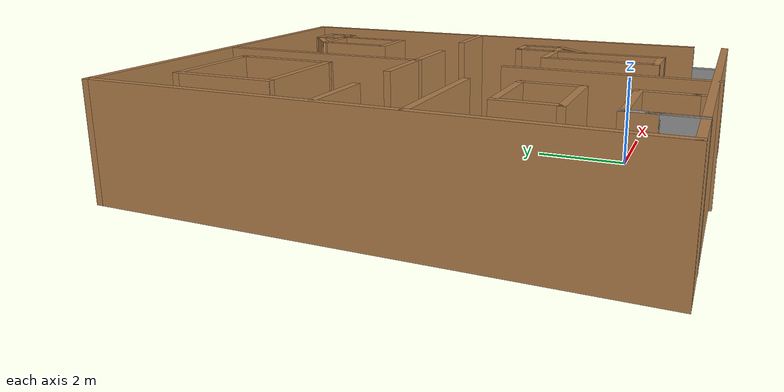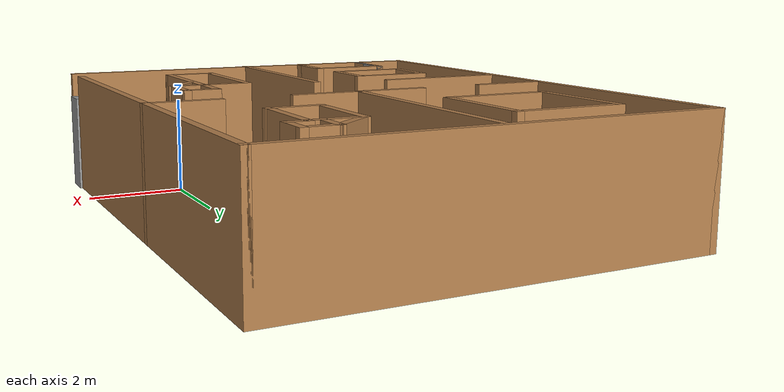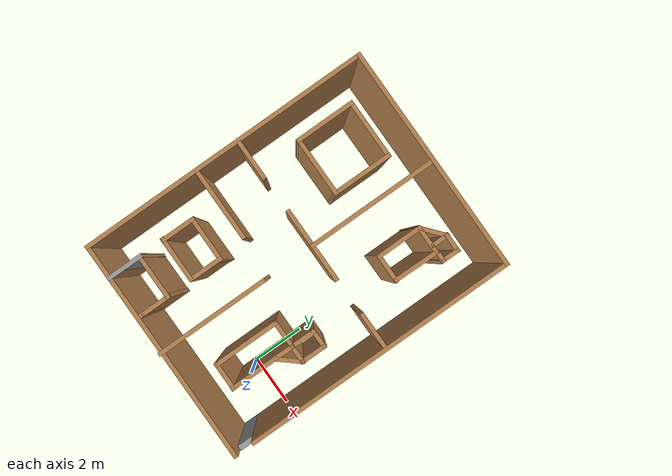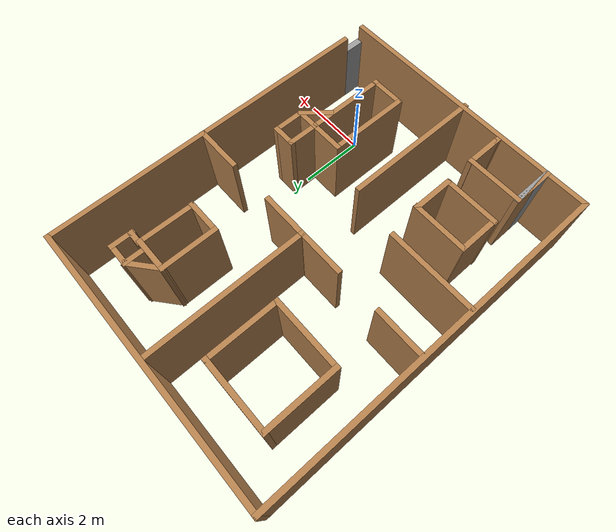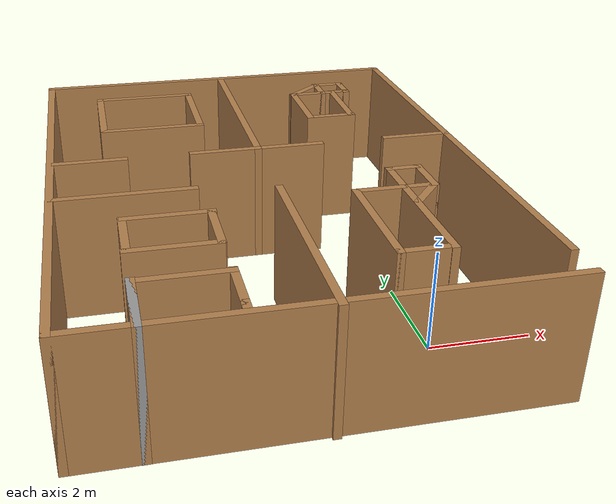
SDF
<?xml version='1.0'?>
<sdf version='1.6'>
  <model name='xm_house'>
    <pose frame=''>-2.34692 3.52383 0 0 -0 0</pose>
    <link name='Door_1'>
      <collision name='Door_1_Collision'>
        <geometry>
          <box>
            <size>0.600573 0.2 2</size>
          </box>
        </geometry>
        <pose frame=''>0 0 1 0 -0 0</pose>
      </collision>
      <visual name='Door_1_Visual'>
        <pose frame=''>0 0 1 0 -0 0</pose>
        <geometry>
          <box>
            <size>0.600573 0.2 2</size>
          </box>
        </geometry>
        <material>
          <script>
            <uri>file://media/materials/scripts/gazebo.material</uri>
            <name>Gazebo/Grey</name>
          </script>
        </material>
      </visual>
      <pose frame=''>4.19497 -5.01881 0 0 -0 1.56748</pose>
    </link>
    <link name='Wall_10'>
      <collision name='Wall_10_Collision'>
        <geometry>
          <box>
            <size>8.5 0.15 2.5</size>
          </box>
        </geometry>
        <pose frame=''>0 0 1.25 0 -0 0</pose>
      </collision>
      <visual name='Wall_10_Visual'>
        <pose frame=''>0 0 1.25 0 -0 0</pose>
        <geometry>
          <box>
            <size>8.5 0.15 2.5</size>
          </box>
        </geometry>
        <material>
          <script>
            <uri>file://media/materials/scripts/gazebo.material</uri>
            <name>Gazebo/Wood</name>
          </script>
          <ambient>1 1 1 1</ambient>
        </material>
      </visual>
      <pose frame=''>-0.000837 5.45551 0 0 -0 0</pose>
    </link>
    <link name='Wall_11'>
      <collision name='Wall_11_Collision'>
        <geometry>
          <box>
            <size>10.25 0.15 2.5</size>
          </box>
        </geometry>
        <pose frame=''>0 0 1.25 0 -0 0</pose>
      </collision>
      <visual name='Wall_11_Visual'>
        <pose frame=''>0 0 1.25 0 -0 0</pose>
        <geometry>
          <box>
            <size>10.25 0.15 2.5</size>
          </box>
        </geometry>
        <material>
          <script>
            <uri>file://media/materials/scripts/gazebo.material</uri>
            <name>Gazebo/Wood</name>
          </script>
          <ambient>1 1 1 1</ambient>
        </material>
      </visual>
      <pose frame=''>4.17416 0.40551 0 0 0 -1.5708</pose>
    </link>
    <link name='Wall_13'>
      <collision name='Wall_13_Collision'>
        <geometry>
          <box>
            <size>4.25 0.15 2.5</size>
          </box>
        </geometry>
        <pose frame=''>0 0 1.25 0 -0 0</pose>
      </collision>
      <visual name='Wall_13_Visual'>
        <pose frame=''>0 0 1.25 0 -0 0</pose>
        <geometry>
          <box>
            <size>4.25 0.15 2.5</size>
          </box>
        </geometry>
        <material>
          <script>
            <uri>file://media/materials/scripts/gazebo.material</uri>
            <name>Gazebo/Wood</name>
          </script>
          <ambient>1 1 1 1</ambient>
        </material>
      </visual>
      <pose frame=''>0.041209 -3.40551 0 0 0 -1.5708</pose>
    </link>
    <link name='Wall_15'>
      <collision name='Wall_15_Collision'>
        <geometry>
          <box>
            <size>1.5 0.15 2.5</size>
          </box>
        </geometry>
        <pose frame=''>0 0 1.25 0 -0 0</pose>
      </collision>
      <visual name='Wall_15_Visual'>
        <pose frame=''>0 0 1.25 0 -0 0</pose>
        <geometry>
          <box>
            <size>1.5 0.15 2.5</size>
          </box>
        </geometry>
        <material>
          <script>
            <uri>file://media/materials/scripts/gazebo.material</uri>
            <name>Gazebo/Wood</name>
          </script>
          <ambient>1 1 1 1</ambient>
        </material>
      </visual>
      <pose frame=''>3.50084 0.648624 0 0 -0 0</pose>
    </link>
    <link name='Wall_17'>
      <collision name='Wall_17_Collision'>
        <geometry>
          <box>
            <size>2.5 0.15 2.5</size>
          </box>
        </geometry>
        <pose frame=''>0 0 1.25 0 -0 0</pose>
      </collision>
      <visual name='Wall_17_Visual'>
        <pose frame=''>0 0 1.25 0 -0 0</pose>
        <geometry>
          <box>
            <size>2.5 0.15 2.5</size>
          </box>
        </geometry>
        <material>
          <script>
            <uri>file://media/materials/scripts/gazebo.material</uri>
            <name>Gazebo/Wood</name>
          </script>
          <ambient>1 1 1 1</ambient>
        </material>
      </visual>
      <pose frame=''>1.39283 -2.9935 0 0 0 -1.5708</pose>
    </link>
    <link name='Wall_18'>
      <collision name='Wall_18_Collision'>
        <geometry>
          <box>
            <size>1.09003 0.15 2.5</size>
          </box>
        </geometry>
        <pose frame=''>0 0 1.25 0 -0 0</pose>
      </collision>
      <visual name='Wall_18_Visual'>
        <pose frame=''>0 0 1.25 0 -0 0</pose>
        <geometry>
          <box>
            <size>1.09003 0.15 2.5</size>
          </box>
        </geometry>
        <material>
          <script>
            <uri>file://media/materials/scripts/gazebo.material</uri>
            <name>Gazebo/Wood</name>
          </script>
          <ambient>1 1 1 1</ambient>
        </material>
      </visual>
      <pose frame=''>1.86285 -4.1685 0 0 -0 0</pose>
    </link>
    <link name='Wall_19'>
      <collision name='Wall_19_Collision'>
        <geometry>
          <box>
            <size>2.5 0.15 2.5</size>
          </box>
        </geometry>
        <pose frame=''>0 0 1.25 0 -0 0</pose>
      </collision>
      <visual name='Wall_19_Visual'>
        <pose frame=''>0 0 1.25 0 -0 0</pose>
        <geometry>
          <box>
            <size>2.5 0.15 2.5</size>
          </box>
        </geometry>
        <material>
          <script>
            <uri>file://media/materials/scripts/gazebo.material</uri>
            <name>Gazebo/Wood</name>
          </script>
          <ambient>1 1 1 1</ambient>
        </material>
      </visual>
      <pose frame=''>2.33286 -3.00672 0 0 -0 1.5708</pose>
    </link>
    <link name='Wall_20'>
      <collision name='Wall_20_Collision'>
        <geometry>
          <box>
            <size>1.09003 0.15 2.5</size>
          </box>
        </geometry>
        <pose frame=''>0 0 1.25 0 -0 0</pose>
      </collision>
      <visual name='Wall_20_Visual'>
        <pose frame=''>0 0 1.25 0 -0 0</pose>
        <geometry>
          <box>
            <size>1.09003 0.15 2.5</size>
          </box>
        </geometry>
        <material>
          <script>
            <uri>file://media/materials/scripts/gazebo.material</uri>
            <name>Gazebo/Wood</name>
          </script>
          <ambient>1 1 1 1</ambient>
        </material>
      </visual>
      <pose frame=''>1.86285 -1.8185 0 0 -0 3.14159</pose>
    </link>
    <link name='Wall_29'>
      <collision name='Wall_29_Collision'>
        <geometry>
          <box>
            <size>1 0.15 2.5</size>
          </box>
        </geometry>
        <pose frame=''>0 0 1.25 0 -0 0</pose>
      </collision>
      <visual name='Wall_29_Visual'>
        <pose frame=''>0 0 1.25 0 -0 0</pose>
        <geometry>
          <box>
            <size>1 0.15 2.5</size>
          </box>
        </geometry>
        <material>
          <script>
            <uri>file://media/materials/scripts/gazebo.material</uri>
            <name>Gazebo/Wood</name>
          </script>
          <ambient>1 1 1 1</ambient>
        </material>
      </visual>
      <pose frame=''>2.33286 -1.3935 0 0 0 -1.5708</pose>
    </link>
    <link name='Wall_30'>
      <collision name='Wall_30_Collision'>
        <geometry>
          <box>
            <size>0.75 0.15 2.5</size>
          </box>
        </geometry>
        <pose frame=''>0 0 1.25 0 -0 0</pose>
      </collision>
      <visual name='Wall_30_Visual'>
        <pose frame=''>0 0 1.25 0 -0 0</pose>
        <geometry>
          <box>
            <size>0.75 0.15 2.5</size>
          </box>
        </geometry>
        <material>
          <script>
            <uri>file://media/materials/scripts/gazebo.material</uri>
            <name>Gazebo/Wood</name>
          </script>
          <ambient>1 1 1 1</ambient>
        </material>
      </visual>
      <pose frame=''>2.63286 -1.8185 0 0 -0 0</pose>
    </link>
    <link name='Wall_31'>
      <collision name='Wall_31_Collision'>
        <geometry>
          <box>
            <size>1 0.15 2.5</size>
          </box>
        </geometry>
        <pose frame=''>0 0 1.25 0 -0 0</pose>
      </collision>
      <visual name='Wall_31_Visual'>
        <pose frame=''>0 0 1.25 0 -0 0</pose>
        <geometry>
          <box>
            <size>1 0.15 2.5</size>
          </box>
        </geometry>
        <material>
          <script>
            <uri>file://media/materials/scripts/gazebo.material</uri>
            <name>Gazebo/Wood</name>
          </script>
          <ambient>1 1 1 1</ambient>
        </material>
      </visual>
      <pose frame=''>2.93286 -1.3935 0 0 -0 1.5708</pose>
    </link>
    <link name='Wall_32'>
      <collision name='Wall_32_Collision'>
        <geometry>
          <box>
            <size>0.75 0.15 2.5</size>
          </box>
        </geometry>
        <pose frame=''>0 0 1.25 0 -0 0</pose>
      </collision>
      <visual name='Wall_32_Visual'>
        <pose frame=''>0 0 1.25 0 -0 0</pose>
        <geometry>
          <box>
            <size>0.75 0.15 2.5</size>
          </box>
        </geometry>
        <material>
          <script>
            <uri>file://media/materials/scripts/gazebo.material</uri>
            <name>Gazebo/Wood</name>
          </script>
          <ambient>1 1 1 1</ambient>
        </material>
      </visual>
      <pose frame=''>2.63286 -0.9685 0 0 -0 3.14159</pose>
    </link>
    <link name='Wall_34'>
      <collision name='Wall_34_Collision'>
        <geometry>
          <box>
            <size>1.00737 0.15 2.5</size>
          </box>
        </geometry>
        <pose frame=''>0 0 1.25 0 -0 0</pose>
      </collision>
      <visual name='Wall_34_Visual'>
        <pose frame=''>0 0 1.25 0 -0 0</pose>
        <geometry>
          <box>
            <size>1.00737 0.15 2.5</size>
          </box>
        </geometry>
        <material>
          <script>
            <uri>file://media/materials/scripts/gazebo.material</uri>
            <name>Gazebo/Wood</name>
          </script>
          <ambient>1 1 1 1</ambient>
        </material>
      </visual>
      <pose frame=''>2.65217 -2.14251 0 0 -0 0.856923</pose>
    </link>
    <link name='Wall_38'>
      <collision name='Wall_38_Collision'>
        <geometry>
          <box>
            <size>4.86732 0.15 2.5</size>
          </box>
        </geometry>
        <pose frame=''>0 0 1.25 0 -0 0</pose>
      </collision>
      <visual name='Wall_38_Visual'>
        <pose frame=''>0 0 1.25 0 -0 0</pose>
        <geometry>
          <box>
            <size>4.86732 0.15 2.5</size>
          </box>
        </geometry>
        <material>
          <script>
            <uri>file://media/materials/scripts/gazebo.material</uri>
            <name>Gazebo/Wood</name>
          </script>
          <ambient>1 1 1 1</ambient>
        </material>
      </visual>
      <pose frame=''>0.029885 2.98518 0 0 0 -1.5708</pose>
    </link>
    <link name='Wall_39'>
      <collision name='Wall_39_Collision'>
        <geometry>
          <box>
            <size>1.5 0.15 2.5</size>
          </box>
        </geometry>
        <pose frame=''>0 0 1.25 0 -0 0</pose>
      </collision>
      <visual name='Wall_39_Visual'>
        <pose frame=''>0 0 1.25 0 -0 0</pose>
        <geometry>
          <box>
            <size>1.5 0.15 2.5</size>
          </box>
        </geometry>
        <material>
          <script>
            <uri>file://media/materials/scripts/gazebo.material</uri>
            <name>Gazebo/Wood</name>
          </script>
          <ambient>1 1 1 1</ambient>
        </material>
      </visual>
      <pose frame=''>0.687395 0.626535 0 0 -0 0</pose>
    </link>
    <link name='Wall_41'>
      <collision name='Wall_41_Collision'>
        <geometry>
          <box>
            <size>1.5 0.15 2.5</size>
          </box>
        </geometry>
        <pose frame=''>0 0 1.25 0 -0 0</pose>
      </collision>
      <visual name='Wall_41_Visual'>
        <pose frame=''>0 0 1.25 0 -0 0</pose>
        <geometry>
          <box>
            <size>1.5 0.15 2.5</size>
          </box>
        </geometry>
        <material>
          <script>
            <uri>file://media/materials/scripts/gazebo.material</uri>
            <name>Gazebo/Wood</name>
          </script>
          <ambient>1 1 1 1</ambient>
        </material>
      </visual>
      <pose frame=''>-0.645115 0.626535 0 0 -0 3.14159</pose>
    </link>
    <link name='Wall_43'>
      <collision name='Wall_43_Collision'>
        <geometry>
          <box>
            <size>1.5 0.15 2.5</size>
          </box>
        </geometry>
        <pose frame=''>0 0 1.25 0 -0 0</pose>
      </collision>
      <visual name='Wall_43_Visual'>
        <pose frame=''>0 0 1.25 0 -0 0</pose>
        <geometry>
          <box>
            <size>1.5 0.15 2.5</size>
          </box>
        </geometry>
        <material>
          <script>
            <uri>file://media/materials/scripts/gazebo.material</uri>
            <name>Gazebo/Wood</name>
          </script>
          <ambient>1 1 1 1</ambient>
        </material>
      </visual>
      <pose frame=''>-3.39463 0.609342 0 0 -0 0</pose>
    </link>
    <link name='Wall_46'>
      <collision name='Wall_46_Collision'>
        <geometry>
          <box>
            <size>2.25 0.15 2.5</size>
          </box>
        </geometry>
        <pose frame=''>0 0 1.25 0 -0 0</pose>
      </collision>
      <visual name='Wall_46_Visual'>
        <pose frame=''>0 0 1.25 0 -0 0</pose>
        <geometry>
          <box>
            <size>2.25 0.15 2.5</size>
          </box>
        </geometry>
        <material>
          <script>
            <uri>file://media/materials/scripts/gazebo.material</uri>
            <name>Gazebo/Wood</name>
          </script>
          <ambient>1 1 1 1</ambient>
        </material>
      </visual>
      <pose frame=''>-3.04228 3.29005 0 0 0 -1.5708</pose>
    </link>
    <link name='Wall_47'>
      <collision name='Wall_47_Collision'>
        <geometry>
          <box>
            <size>2.25 0.15 2.5</size>
          </box>
        </geometry>
        <pose frame=''>0 0 1.25 0 -0 0</pose>
      </collision>
      <visual name='Wall_47_Visual'>
        <pose frame=''>0 0 1.25 0 -0 0</pose>
        <geometry>
          <box>
            <size>2.25 0.15 2.5</size>
          </box>
        </geometry>
        <material>
          <script>
            <uri>file://media/materials/scripts/gazebo.material</uri>
            <name>Gazebo/Wood</name>
          </script>
          <ambient>1 1 1 1</ambient>
        </material>
      </visual>
      <pose frame=''>-1.99228 2.24005 0 0 -0 0</pose>
    </link>
    <link name='Wall_48'>
      <collision name='Wall_48_Collision'>
        <geometry>
          <box>
            <size>2.25 0.15 2.5</size>
          </box>
        </geometry>
        <pose frame=''>0 0 1.25 0 -0 0</pose>
      </collision>
      <visual name='Wall_48_Visual'>
        <pose frame=''>0 0 1.25 0 -0 0</pose>
        <geometry>
          <box>
            <size>2.25 0.15 2.5</size>
          </box>
        </geometry>
        <material>
          <script>
            <uri>file://media/materials/scripts/gazebo.material</uri>
            <name>Gazebo/Wood</name>
          </script>
          <ambient>1 1 1 1</ambient>
        </material>
      </visual>
      <pose frame=''>-0.942282 3.29005 0 0 -0 1.5708</pose>
    </link>
    <link name='Wall_49'>
      <collision name='Wall_49_Collision'>
        <geometry>
          <box>
            <size>2.25 0.15 2.5</size>
          </box>
        </geometry>
        <pose frame=''>0 0 1.25 0 -0 0</pose>
      </collision>
      <visual name='Wall_49_Visual'>
        <pose frame=''>0 0 1.25 0 -0 0</pose>
        <geometry>
          <box>
            <size>2.25 0.15 2.5</size>
          </box>
        </geometry>
        <material>
          <script>
            <uri>file://media/materials/scripts/gazebo.material</uri>
            <name>Gazebo/Wood</name>
          </script>
          <ambient>1 1 1 1</ambient>
        </material>
      </visual>
      <pose frame=''>-1.99228 4.34005 0 0 -0 3.14159</pose>
    </link>
    <link name='Wall_51'>
      <collision name='Wall_51_Collision'>
        <geometry>
          <box>
            <size>1.75 0.15 2.5</size>
          </box>
        </geometry>
        <pose frame=''>0 0 1.25 0 -0 0</pose>
      </collision>
      <visual name='Wall_51_Visual'>
        <pose frame=''>0 0 1.25 0 -0 0</pose>
        <geometry>
          <box>
            <size>1.75 0.15 2.5</size>
          </box>
        </geometry>
        <material>
          <script>
            <uri>file://media/materials/scripts/gazebo.material</uri>
            <name>Gazebo/Wood</name>
          </script>
          <ambient>1 1 1 1</ambient>
        </material>
      </visual>
      <pose frame=''>1.56904 3.00066 0 0 0 -1.5708</pose>
    </link>
    <link name='Wall_52'>
      <collision name='Wall_52_Collision'>
        <geometry>
          <box>
            <size>1.11522 0.15 2.5</size>
          </box>
        </geometry>
        <pose frame=''>0 0 1.25 0 -0 0</pose>
      </collision>
      <visual name='Wall_52_Visual'>
        <pose frame=''>0 0 1.25 0 -0 0</pose>
        <geometry>
          <box>
            <size>1.11522 0.15 2.5</size>
          </box>
        </geometry>
        <material>
          <script>
            <uri>file://media/materials/scripts/gazebo.material</uri>
            <name>Gazebo/Wood</name>
          </script>
          <ambient>1 1 1 1</ambient>
        </material>
      </visual>
      <pose frame=''>2.05165 2.20065 0 0 -0 0</pose>
    </link>
    <link name='Wall_53'>
      <collision name='Wall_53_Collision'>
        <geometry>
          <box>
            <size>1.73261 0.15 2.5</size>
          </box>
        </geometry>
        <pose frame=''>0 0 1.25 0 -0 0</pose>
      </collision>
      <visual name='Wall_53_Visual'>
        <pose frame=''>0 0 1.25 0 -0 0</pose>
        <geometry>
          <box>
            <size>1.73261 0.15 2.5</size>
          </box>
        </geometry>
        <material>
          <script>
            <uri>file://media/materials/scripts/gazebo.material</uri>
            <name>Gazebo/Wood</name>
          </script>
          <ambient>1 1 1 1</ambient>
        </material>
      </visual>
      <pose frame=''>2.52551 3.0094 0 0 -0 1.55974</pose>
    </link>
    <link name='Wall_54'>
      <collision name='Wall_54_Collision'>
        <geometry>
          <box>
            <size>1.11522 0.15 2.5</size>
          </box>
        </geometry>
        <pose frame=''>0 0 1.25 0 -0 0</pose>
      </collision>
      <visual name='Wall_54_Visual'>
        <pose frame=''>0 0 1.25 0 -0 0</pose>
        <geometry>
          <box>
            <size>1.11522 0.15 2.5</size>
          </box>
        </geometry>
        <material>
          <script>
            <uri>file://media/materials/scripts/gazebo.material</uri>
            <name>Gazebo/Wood</name>
          </script>
          <ambient>1 1 1 1</ambient>
        </material>
      </visual>
      <pose frame=''>2.05165 3.80065 0 0 -0 3.14159</pose>
    </link>
    <link name='Wall_56'>
      <collision name='Wall_56_Collision'>
        <geometry>
          <box>
            <size>0.5 0.15 2.5</size>
          </box>
        </geometry>
        <pose frame=''>0 0 1.25 0 -0 0</pose>
      </collision>
      <visual name='Wall_56_Visual'>
        <pose frame=''>0 0 1.25 0 -0 0</pose>
        <geometry>
          <box>
            <size>0.5 0.15 2.5</size>
          </box>
        </geometry>
        <material>
          <script>
            <uri>file://media/materials/scripts/gazebo.material</uri>
            <name>Gazebo/Wood</name>
          </script>
          <ambient>1 1 1 1</ambient>
        </material>
      </visual>
      <pose frame=''>2.70926 3.83125 0 0 -0 0</pose>
    </link>
    <link name='Wall_57'>
      <collision name='Wall_57_Collision'>
        <geometry>
          <box>
            <size>0.75 0.15 2.5</size>
          </box>
        </geometry>
        <pose frame=''>0 0 1.25 0 -0 0</pose>
      </collision>
      <visual name='Wall_57_Visual'>
        <pose frame=''>0 0 1.25 0 -0 0</pose>
        <geometry>
          <box>
            <size>0.75 0.15 2.5</size>
          </box>
        </geometry>
        <material>
          <script>
            <uri>file://media/materials/scripts/gazebo.material</uri>
            <name>Gazebo/Wood</name>
          </script>
          <ambient>1 1 1 1</ambient>
        </material>
      </visual>
      <pose frame=''>2.88426 4.10065 0 0 -0 1.5708</pose>
    </link>
    <link name='Wall_59'>
      <collision name='Wall_59_Collision'>
        <geometry>
          <box>
            <size>0.75 0.15 2.5</size>
          </box>
        </geometry>
        <pose frame=''>0 0 1.25 0 -0 0</pose>
      </collision>
      <visual name='Wall_59_Visual'>
        <pose frame=''>0 0 1.25 0 -0 0</pose>
        <geometry>
          <box>
            <size>0.75 0.15 2.5</size>
          </box>
        </geometry>
        <material>
          <script>
            <uri>file://media/materials/scripts/gazebo.material</uri>
            <name>Gazebo/Wood</name>
          </script>
          <ambient>1 1 1 1</ambient>
        </material>
      </visual>
      <pose frame=''>2.58426 4.40065 0 0 -0 3.14159</pose>
    </link>
    <link name='Wall_6'>
      <collision name='Wall_6_Collision'>
        <geometry>
          <box>
            <size>11 0.15 2.5</size>
          </box>
        </geometry>
        <pose frame=''>0 0 1.25 0 -0 0</pose>
      </collision>
      <visual name='Wall_6_Visual'>
        <pose frame=''>0 0 1.25 0 -0 0</pose>
        <geometry>
          <box>
            <size>11 0.15 2.5</size>
          </box>
        </geometry>
        <material>
          <script>
            <uri>file://media/materials/scripts/gazebo.material</uri>
            <name>Gazebo/Wood</name>
          </script>
          <ambient>1 1 1 1</ambient>
        </material>
      </visual>
      <pose frame=''>-4.17584 0.03051 0 0 0 -1.5708</pose>
    </link>
    <link name='Wall_60'>
      <collision name='Wall_60_Collision'>
        <geometry>
          <box>
            <size>0.75 0.15 2.5</size>
          </box>
        </geometry>
        <pose frame=''>0 0 1.25 0 -0 0</pose>
      </collision>
      <visual name='Wall_60_Visual'>
        <pose frame=''>0 0 1.25 0 -0 0</pose>
        <geometry>
          <box>
            <size>0.75 0.15 2.5</size>
          </box>
        </geometry>
        <material>
          <script>
            <uri>file://media/materials/scripts/gazebo.material</uri>
            <name>Gazebo/Wood</name>
          </script>
          <ambient>1 1 1 1</ambient>
        </material>
      </visual>
      <pose frame=''>2.28426 4.10065 0 0 0 -1.5708</pose>
    </link>
    <link name='Wall_62'>
      <collision name='Wall_62_Collision'>
        <geometry>
          <box>
            <size>1.08356 0.15 2.5</size>
          </box>
        </geometry>
        <pose frame=''>0 0 1.25 0 -0 0</pose>
      </collision>
      <visual name='Wall_62_Visual'>
        <pose frame=''>0 0 1.25 0 -0 0</pose>
        <geometry>
          <box>
            <size>1.08356 0.15 2.5</size>
          </box>
        </geometry>
        <material>
          <script>
            <uri>file://media/materials/scripts/gazebo.material</uri>
            <name>Gazebo/Wood</name>
          </script>
          <ambient>1 1 1 1</ambient>
        </material>
      </visual>
      <pose frame=''>1.92665 4.10065 0 0 -0 0.698017</pose>
    </link>
    <link name='Wall_65'>
      <collision name='Wall_65_Collision'>
        <geometry>
          <box>
            <size>2.75 0.15 2.5</size>
          </box>
        </geometry>
        <pose frame=''>0 0 1.25 0 -0 0</pose>
      </collision>
      <visual name='Wall_65_Visual'>
        <pose frame=''>0 0 1.25 0 -0 0</pose>
        <geometry>
          <box>
            <size>2.75 0.15 2.5</size>
          </box>
        </geometry>
        <material>
          <script>
            <uri>file://media/materials/scripts/gazebo.material</uri>
            <name>Gazebo/Wood</name>
          </script>
          <ambient>1 1 1 1</ambient>
        </material>
      </visual>
      <pose frame=''>-2.82237 -1.06051 0 0 -0 0</pose>
    </link>
    <link name='Wall_67'>
      <collision name='Wall_67_Collision'>
        <geometry>
          <box>
            <size>1.37068 0.15 2.5</size>
          </box>
        </geometry>
        <pose frame=''>0 0 1.25 0 -0 0</pose>
      </collision>
      <visual name='Wall_67_Visual'>
        <pose frame=''>0 0 1.25 0 -0 0</pose>
        <geometry>
          <box>
            <size>1.37068 0.15 2.5</size>
          </box>
        </geometry>
        <material>
          <script>
            <uri>file://media/materials/scripts/gazebo.material</uri>
            <name>Gazebo/Grey</name>
          </script>
          <ambient>1 1 1 1</ambient>
        </material>
      </visual>
      <pose frame=''>-2.93566 -4.78845 0 0 0 -1.5708</pose>
    </link>
    <link name='Wall_68'>
      <collision name='Wall_68_Collision'>
        <geometry>
          <box>
            <size>1.37068 0.15 2.5</size>
          </box>
        </geometry>
        <pose frame=''>0 0 1.25 0 -0 0</pose>
      </collision>
      <visual name='Wall_68_Visual'>
        <pose frame=''>0 0 1.25 0 -0 0</pose>
        <geometry>
          <box>
            <size>1.37068 0.15 2.5</size>
          </box>
        </geometry>
        <material>
          <script>
            <uri>file://media/materials/scripts/gazebo.material</uri>
            <name>Gazebo/Wood</name>
          </script>
          <ambient>1 1 1 1</ambient>
        </material>
      </visual>
      <pose frame=''>-2.93566 -4.78845 0 0 -0 1.5708</pose>
    </link>
    <link name='Wall_69'>
      <collision name='Wall_69_Collision'>
        <geometry>
          <box>
            <size>1.75 0.15 2.5</size>
          </box>
        </geometry>
        <pose frame=''>0 0 1.25 0 -0 0</pose>
      </collision>
      <visual name='Wall_69_Visual'>
        <pose frame=''>0 0 1.25 0 -0 0</pose>
        <geometry>
          <box>
            <size>1.75 0.15 2.5</size>
          </box>
        </geometry>
        <material>
          <script>
            <uri>file://media/materials/scripts/gazebo.material</uri>
            <name>Gazebo/Wood</name>
          </script>
          <ambient>1 1 1 1</ambient>
        </material>
      </visual>
      <pose frame=''>-2.13566 -4.19823 0 0 -0 0</pose>
    </link>
    <link name='Wall_70'>
      <collision name='Wall_70_Collision'>
        <geometry>
          <box>
            <size>1.12068 0.15 2.5</size>
          </box>
        </geometry>
        <pose frame=''>0 0 1.25 0 -0 0</pose>
      </collision>
      <visual name='Wall_70_Visual'>
        <pose frame=''>0 0 1.25 0 -0 0</pose>
        <geometry>
          <box>
            <size>1.12068 0.15 2.5</size>
          </box>
        </geometry>
        <material>
          <script>
            <uri>file://media/materials/scripts/gazebo.material</uri>
            <name>Gazebo/Wood</name>
          </script>
          <ambient>1 1 1 1</ambient>
        </material>
      </visual>
      <pose frame=''>-1.33566 -4.66345 0 0 0 -1.5708</pose>
    </link>
    <link name='Wall_71'>
      <collision name='Wall_71_Collision'>
        <geometry>
          <box>
            <size>0.25 0.15 2.5</size>
          </box>
        </geometry>
        <pose frame=''>0 0 1.25 0 -0 0</pose>
      </collision>
      <visual name='Wall_71_Visual'>
        <pose frame=''>0 0 1.25 0 -0 0</pose>
        <geometry>
          <box>
            <size>0.25 0.15 2.5</size>
          </box>
        </geometry>
        <material>
          <script>
            <uri>file://media/materials/scripts/gazebo.material</uri>
            <name>Gazebo/Wood</name>
          </script>
          <ambient>1 1 1 1</ambient>
        </material>
      </visual>
      <pose frame=''>-1.33566 -5.19879 0 0 0 -1.5708</pose>
    </link>
    <link name='Wall_73'>
      <collision name='Wall_73_Collision'>
        <geometry>
          <box>
            <size>1.29023 0.15 2.5</size>
          </box>
        </geometry>
        <pose frame=''>0 0 1.25 0 -0 0</pose>
      </collision>
      <visual name='Wall_73_Visual'>
        <pose frame=''>0 0 1.25 0 -0 0</pose>
        <geometry>
          <box>
            <size>1.29023 0.15 2.5</size>
          </box>
        </geometry>
        <material>
          <script>
            <uri>file://media/materials/scripts/gazebo.material</uri>
            <name>Gazebo/Wood</name>
          </script>
          <ambient>1 1 1 1</ambient>
        </material>
      </visual>
      <pose frame=''>-2.93566 -2.65642 0 0 0 -1.5708</pose>
    </link>
    <link name='Wall_74'>
      <collision name='Wall_74_Collision'>
        <geometry>
          <box>
            <size>1.72125 0.15 2.5</size>
          </box>
        </geometry>
        <pose frame=''>0 0 1.25 0 -0 0</pose>
      </collision>
      <visual name='Wall_74_Visual'>
        <pose frame=''>0 0 1.25 0 -0 0</pose>
        <geometry>
          <box>
            <size>1.72125 0.15 2.5</size>
          </box>
        </geometry>
        <material>
          <script>
            <uri>file://media/materials/scripts/gazebo.material</uri>
            <name>Gazebo/Wood</name>
          </script>
          <ambient>1 1 1 1</ambient>
        </material>
      </visual>
      <pose frame=''>-2.17015 -3.24664 0 0 -0 0</pose>
    </link>
    <link name='Wall_75'>
      <collision name='Wall_75_Collision'>
        <geometry>
          <box>
            <size>1.29023 0.15 2.5</size>
          </box>
        </geometry>
        <pose frame=''>0 0 1.25 0 -0 0</pose>
      </collision>
      <visual name='Wall_75_Visual'>
        <pose frame=''>0 0 1.25 0 -0 0</pose>
        <geometry>
          <box>
            <size>1.29023 0.15 2.5</size>
          </box>
        </geometry>
        <material>
          <script>
            <uri>file://media/materials/scripts/gazebo.material</uri>
            <name>Gazebo/Wood</name>
          </script>
          <ambient>1 1 1 1</ambient>
        </material>
      </visual>
      <pose frame=''>-1.36441 -2.65642 0 0 -0 1.5708</pose>
    </link>
    <link name='Wall_76'>
      <collision name='Wall_76_Collision'>
        <geometry>
          <box>
            <size>1.72125 0.15 2.5</size>
          </box>
        </geometry>
        <pose frame=''>0 0 1.25 0 -0 0</pose>
      </collision>
      <visual name='Wall_76_Visual'>
        <pose frame=''>0 0 1.25 0 -0 0</pose>
        <geometry>
          <box>
            <size>1.72125 0.15 2.5</size>
          </box>
        </geometry>
        <material>
          <script>
            <uri>file://media/materials/scripts/gazebo.material</uri>
            <name>Gazebo/Wood</name>
          </script>
          <ambient>1 1 1 1</ambient>
        </material>
      </visual>
      <pose frame=''>-2.12993 -2.0863 0 0 -0 3.14159</pose>
    </link>
    <link name='Wall_8'>
      <collision name='Wall_8_Collision'>
        <geometry>
          <box>
            <size>8.5 0.15 2.5</size>
          </box>
        </geometry>
        <pose frame=''>0 0 1.25 0 -0 0</pose>
      </collision>
      <visual name='Wall_8_Visual'>
        <pose frame=''>0 0 1.25 0 -0 0</pose>
        <geometry>
          <box>
            <size>8.5 0.15 2.5</size>
          </box>
        </geometry>
        <material>
          <script>
            <uri>file://media/materials/scripts/gazebo.material</uri>
            <name>Gazebo/Wood</name>
          </script>
          <ambient>1 1 1 1</ambient>
        </material>
      </visual>
      <pose frame=''>-0.000837 -5.39449 0 0 -0 0</pose>
    </link>
    <static>1</static>
  </model>
</sdf>
